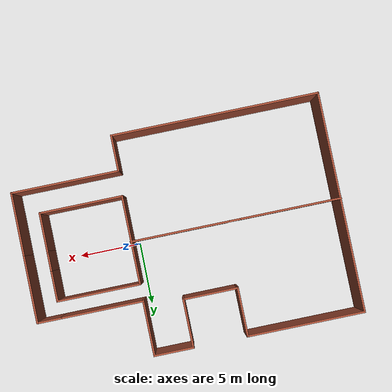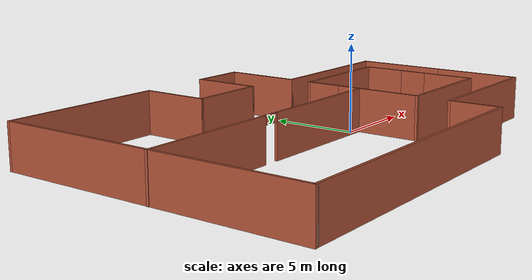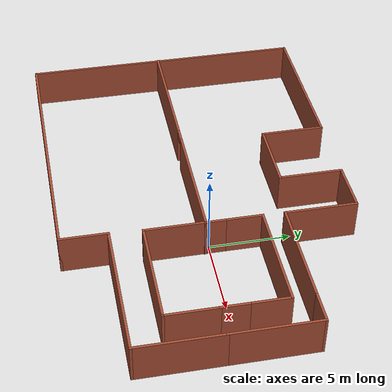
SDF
<?xml version='1.0'?>
<sdf version='1.7'>
  <model name='Building'>
    <link name='Wall_1'>
      <pose>-11.6652 8.8 0 0 -0 0</pose>
      <self_collide>0</self_collide>
      <enable_wind>0</enable_wind>
      <kinematic>0</kinematic>
      <visual name='Wall_1_Visual'>
        <pose>0 0 1.25 0 -0 0</pose>
        <geometry>
          <box>
            <size>9.5 0.15 2.5</size>
          </box>
        </geometry>
        <material>
          <script>
            <uri>file://media/materials/scripts/gazebo.material</uri>
            <name>Gazebo/Bricks</name>
          </script>
          <ambient>1 1 1 1</ambient>
          <shader type='pixel'/>
        </material>
        <meta>
          <layer>0</layer>
        </meta>
        <transparency>0</transparency>
        <cast_shadows>1</cast_shadows>
      </visual>
      <collision name='Wall_1_Collision'>
        <laser_retro>0</laser_retro>
        <max_contacts>10</max_contacts>
        <pose>0 0 1.25 0 -0 0</pose>
        <geometry>
          <box>
            <size>9.5 0.15 2.5</size>
          </box>
        </geometry>
        <surface>
          <friction>
            <ode>
              <mu>1</mu>
              <mu2>1</mu2>
              <fdir1>0 0 0</fdir1>
              <slip1>0</slip1>
              <slip2>0</slip2>
            </ode>
            <torsional>
              <coefficient>1</coefficient>
              <patch_radius>0</patch_radius>
              <surface_radius>0</surface_radius>
              <use_patch_radius>1</use_patch_radius>
              <ode>
                <slip>0</slip>
              </ode>
            </torsional>
          </friction>
          <bounce>
            <restitution_coefficient>0</restitution_coefficient>
            <threshold>1e+06</threshold>
          </bounce>
          <contact>
            <collide_without_contact>0</collide_without_contact>
            <collide_without_contact_bitmask>1</collide_without_contact_bitmask>
            <collide_bitmask>1</collide_bitmask>
            <ode>
              <soft_cfm>0</soft_cfm>
              <soft_erp>0.2</soft_erp>
              <kp>1e+13</kp>
              <kd>1</kd>
              <max_vel>0.01</max_vel>
              <min_depth>0</min_depth>
            </ode>
            <bullet>
              <split_impulse>1</split_impulse>
              <split_impulse_penetration_threshold>-0.01</split_impulse_penetration_threshold>
              <soft_cfm>0</soft_cfm>
              <soft_erp>0.2</soft_erp>
              <kp>1e+13</kp>
              <kd>1</kd>
            </bullet>
          </contact>
        </surface>
      </collision>
    </link>
    <link name='Wall_10'>
      <pose>-1.09018 8.8 0 0 -0 0</pose>
      <self_collide>0</self_collide>
      <enable_wind>0</enable_wind>
      <kinematic>0</kinematic>
      <visual name='Wall_10_Visual'>
        <pose>0 0 1.25 0 -0 0</pose>
        <geometry>
          <box>
            <size>3.25 0.15 2.5</size>
          </box>
        </geometry>
        <material>
          <script>
            <uri>file://media/materials/scripts/gazebo.material</uri>
            <name>Gazebo/Bricks</name>
          </script>
          <ambient>1 1 1 1</ambient>
          <shader type='pixel'/>
        </material>
        <meta>
          <layer>0</layer>
        </meta>
        <transparency>0</transparency>
        <cast_shadows>1</cast_shadows>
      </visual>
      <collision name='Wall_10_Collision'>
        <laser_retro>0</laser_retro>
        <max_contacts>10</max_contacts>
        <pose>0 0 1.25 0 -0 0</pose>
        <geometry>
          <box>
            <size>3.25 0.15 2.5</size>
          </box>
        </geometry>
        <surface>
          <friction>
            <ode>
              <mu>1</mu>
              <mu2>1</mu2>
              <fdir1>0 0 0</fdir1>
              <slip1>0</slip1>
              <slip2>0</slip2>
            </ode>
            <torsional>
              <coefficient>1</coefficient>
              <patch_radius>0</patch_radius>
              <surface_radius>0</surface_radius>
              <use_patch_radius>1</use_patch_radius>
              <ode>
                <slip>0</slip>
              </ode>
            </torsional>
          </friction>
          <bounce>
            <restitution_coefficient>0</restitution_coefficient>
            <threshold>1e+06</threshold>
          </bounce>
          <contact>
            <collide_without_contact>0</collide_without_contact>
            <collide_without_contact_bitmask>1</collide_without_contact_bitmask>
            <collide_bitmask>1</collide_bitmask>
            <ode>
              <soft_cfm>0</soft_cfm>
              <soft_erp>0.2</soft_erp>
              <kp>1e+13</kp>
              <kd>1</kd>
              <max_vel>0.01</max_vel>
              <min_depth>0</min_depth>
            </ode>
            <bullet>
              <split_impulse>1</split_impulse>
              <split_impulse_penetration_threshold>-0.01</split_impulse_penetration_threshold>
              <soft_cfm>0</soft_cfm>
              <soft_erp>0.2</soft_erp>
              <kp>1e+13</kp>
              <kd>1</kd>
            </bullet>
          </contact>
        </surface>
      </collision>
    </link>
    <link name='Wall_11'>
      <pose>0.45982 6.625 0 0 0 -1.5708</pose>
      <self_collide>0</self_collide>
      <enable_wind>0</enable_wind>
      <kinematic>0</kinematic>
      <visual name='Wall_11_Visual'>
        <pose>0 0 1.25 0 -0 0</pose>
        <geometry>
          <box>
            <size>4.5 0.15 2.5</size>
          </box>
        </geometry>
        <material>
          <script>
            <uri>file://media/materials/scripts/gazebo.material</uri>
            <name>Gazebo/Bricks</name>
          </script>
          <ambient>1 1 1 1</ambient>
          <shader type='pixel'/>
        </material>
        <meta>
          <layer>0</layer>
        </meta>
        <transparency>0</transparency>
        <cast_shadows>1</cast_shadows>
      </visual>
      <collision name='Wall_11_Collision'>
        <laser_retro>0</laser_retro>
        <max_contacts>10</max_contacts>
        <pose>0 0 1.25 0 -0 0</pose>
        <geometry>
          <box>
            <size>4.5 0.15 2.5</size>
          </box>
        </geometry>
        <surface>
          <friction>
            <ode>
              <mu>1</mu>
              <mu2>1</mu2>
              <fdir1>0 0 0</fdir1>
              <slip1>0</slip1>
              <slip2>0</slip2>
            </ode>
            <torsional>
              <coefficient>1</coefficient>
              <patch_radius>0</patch_radius>
              <surface_radius>0</surface_radius>
              <use_patch_radius>1</use_patch_radius>
              <ode>
                <slip>0</slip>
              </ode>
            </torsional>
          </friction>
          <bounce>
            <restitution_coefficient>0</restitution_coefficient>
            <threshold>1e+06</threshold>
          </bounce>
          <contact>
            <collide_without_contact>0</collide_without_contact>
            <collide_without_contact_bitmask>1</collide_without_contact_bitmask>
            <collide_bitmask>1</collide_bitmask>
            <ode>
              <soft_cfm>0</soft_cfm>
              <soft_erp>0.2</soft_erp>
              <kp>1e+13</kp>
              <kd>1</kd>
              <max_vel>0.01</max_vel>
              <min_depth>0</min_depth>
            </ode>
            <bullet>
              <split_impulse>1</split_impulse>
              <split_impulse_penetration_threshold>-0.01</split_impulse_penetration_threshold>
              <soft_cfm>0</soft_cfm>
              <soft_erp>0.2</soft_erp>
              <kp>1e+13</kp>
              <kd>1</kd>
            </bullet>
          </contact>
        </surface>
      </collision>
    </link>
    <link name='Wall_30'>
      <pose>0.434769 2.05416 0 0 0 -1.5708</pose>
      <self_collide>0</self_collide>
      <enable_wind>0</enable_wind>
      <kinematic>0</kinematic>
      <visual name='Wall_30_Visual'>
        <pose>0 0 1.25 0 -0 0</pose>
        <geometry>
          <box>
            <size>2.25 0.15 2.5</size>
          </box>
        </geometry>
        <material>
          <script>
            <uri>file://media/materials/scripts/gazebo.material</uri>
            <name>Gazebo/Bricks</name>
          </script>
          <ambient>1 1 1 1</ambient>
          <shader type='pixel'/>
        </material>
        <meta>
          <layer>0</layer>
        </meta>
        <transparency>0</transparency>
        <cast_shadows>1</cast_shadows>
      </visual>
      <collision name='Wall_30_Collision'>
        <laser_retro>0</laser_retro>
        <max_contacts>10</max_contacts>
        <pose>0 0 1.25 0 -0 0</pose>
        <geometry>
          <box>
            <size>2.25 0.15 2.5</size>
          </box>
        </geometry>
        <surface>
          <friction>
            <ode>
              <mu>1</mu>
              <mu2>1</mu2>
              <fdir1>0 0 0</fdir1>
              <slip1>0</slip1>
              <slip2>0</slip2>
            </ode>
            <torsional>
              <coefficient>1</coefficient>
              <patch_radius>0</patch_radius>
              <surface_radius>0</surface_radius>
              <use_patch_radius>1</use_patch_radius>
              <ode>
                <slip>0</slip>
              </ode>
            </torsional>
          </friction>
          <bounce>
            <restitution_coefficient>0</restitution_coefficient>
            <threshold>1e+06</threshold>
          </bounce>
          <contact>
            <collide_without_contact>0</collide_without_contact>
            <collide_without_contact_bitmask>1</collide_without_contact_bitmask>
            <collide_bitmask>1</collide_bitmask>
            <ode>
              <soft_cfm>0</soft_cfm>
              <soft_erp>0.2</soft_erp>
              <kp>1e+13</kp>
              <kd>1</kd>
              <max_vel>0.01</max_vel>
              <min_depth>0</min_depth>
            </ode>
            <bullet>
              <split_impulse>1</split_impulse>
              <split_impulse_penetration_threshold>-0.01</split_impulse_penetration_threshold>
              <soft_cfm>0</soft_cfm>
              <soft_erp>0.2</soft_erp>
              <kp>1e+13</kp>
              <kd>1</kd>
            </bullet>
          </contact>
        </surface>
      </collision>
    </link>
    <link name='Wall_32'>
      <pose>3.75982 4.45 0 0 -0 0</pose>
      <self_collide>0</self_collide>
      <enable_wind>0</enable_wind>
      <kinematic>0</kinematic>
      <visual name='Wall_32_Visual'>
        <pose>0 0 1.25 0 -0 0</pose>
        <geometry>
          <box>
            <size>6.75 0.15 2.5</size>
          </box>
        </geometry>
        <material>
          <script>
            <uri>file://media/materials/scripts/gazebo.material</uri>
            <name>Gazebo/Bricks</name>
          </script>
          <ambient>1 1 1 1</ambient>
          <shader type='pixel'/>
        </material>
        <meta>
          <layer>0</layer>
        </meta>
        <transparency>0</transparency>
        <cast_shadows>1</cast_shadows>
      </visual>
      <collision name='Wall_32_Collision'>
        <laser_retro>0</laser_retro>
        <max_contacts>10</max_contacts>
        <pose>0 0 1.25 0 -0 0</pose>
        <geometry>
          <box>
            <size>6.75 0.15 2.5</size>
          </box>
        </geometry>
        <surface>
          <friction>
            <ode>
              <mu>1</mu>
              <mu2>1</mu2>
              <fdir1>0 0 0</fdir1>
              <slip1>0</slip1>
              <slip2>0</slip2>
            </ode>
            <torsional>
              <coefficient>1</coefficient>
              <patch_radius>0</patch_radius>
              <surface_radius>0</surface_radius>
              <use_patch_radius>1</use_patch_radius>
              <ode>
                <slip>0</slip>
              </ode>
            </torsional>
          </friction>
          <bounce>
            <restitution_coefficient>0</restitution_coefficient>
            <threshold>1e+06</threshold>
          </bounce>
          <contact>
            <collide_without_contact>0</collide_without_contact>
            <collide_without_contact_bitmask>1</collide_without_contact_bitmask>
            <collide_bitmask>1</collide_bitmask>
            <ode>
              <soft_cfm>0</soft_cfm>
              <soft_erp>0.2</soft_erp>
              <kp>1e+13</kp>
              <kd>1</kd>
              <max_vel>0.01</max_vel>
              <min_depth>0</min_depth>
            </ode>
            <bullet>
              <split_impulse>1</split_impulse>
              <split_impulse_penetration_threshold>-0.01</split_impulse_penetration_threshold>
              <soft_cfm>0</soft_cfm>
              <soft_erp>0.2</soft_erp>
              <kp>1e+13</kp>
              <kd>1</kd>
            </bullet>
          </contact>
        </surface>
      </collision>
    </link>
    <link name='Wall_34'>
      <pose>3.73477 3.10416 0 0 -0 0</pose>
      <self_collide>0</self_collide>
      <enable_wind>0</enable_wind>
      <kinematic>0</kinematic>
      <visual name='Wall_34_Visual'>
        <pose>0 0 1.25 0 -0 0</pose>
        <geometry>
          <box>
            <size>6.75 0.15 2.5</size>
          </box>
        </geometry>
        <material>
          <script>
            <uri>file://media/materials/scripts/gazebo.material</uri>
            <name>Gazebo/Bricks</name>
          </script>
          <ambient>1 1 1 1</ambient>
          <shader type='pixel'/>
        </material>
        <meta>
          <layer>0</layer>
        </meta>
        <transparency>0</transparency>
        <cast_shadows>1</cast_shadows>
      </visual>
      <collision name='Wall_34_Collision'>
        <laser_retro>0</laser_retro>
        <max_contacts>10</max_contacts>
        <pose>0 0 1.25 0 -0 0</pose>
        <geometry>
          <box>
            <size>6.75 0.15 2.5</size>
          </box>
        </geometry>
        <surface>
          <friction>
            <ode>
              <mu>1</mu>
              <mu2>1</mu2>
              <fdir1>0 0 0</fdir1>
              <slip1>0</slip1>
              <slip2>0</slip2>
            </ode>
            <torsional>
              <coefficient>1</coefficient>
              <patch_radius>0</patch_radius>
              <surface_radius>0</surface_radius>
              <use_patch_radius>1</use_patch_radius>
              <ode>
                <slip>0</slip>
              </ode>
            </torsional>
          </friction>
          <bounce>
            <restitution_coefficient>0</restitution_coefficient>
            <threshold>1e+06</threshold>
          </bounce>
          <contact>
            <collide_without_contact>0</collide_without_contact>
            <collide_without_contact_bitmask>1</collide_without_contact_bitmask>
            <collide_bitmask>1</collide_bitmask>
            <ode>
              <soft_cfm>0</soft_cfm>
              <soft_erp>0.2</soft_erp>
              <kp>1e+13</kp>
              <kd>1</kd>
              <max_vel>0.01</max_vel>
              <min_depth>0</min_depth>
            </ode>
            <bullet>
              <split_impulse>1</split_impulse>
              <split_impulse_penetration_threshold>-0.01</split_impulse_penetration_threshold>
              <soft_cfm>0</soft_cfm>
              <soft_erp>0.2</soft_erp>
              <kp>1e+13</kp>
              <kd>1</kd>
            </bullet>
          </contact>
        </surface>
      </collision>
    </link>
    <link name='Wall_36'>
      <pose>7.03477 1.92916 0 0 0 -1.5708</pose>
      <self_collide>0</self_collide>
      <enable_wind>0</enable_wind>
      <kinematic>0</kinematic>
      <visual name='Wall_36_Visual'>
        <pose>0 0 1.25 0 -0 0</pose>
        <geometry>
          <box>
            <size>2.5 0.15 2.5</size>
          </box>
        </geometry>
        <material>
          <script>
            <uri>file://media/materials/scripts/gazebo.material</uri>
            <name>Gazebo/Bricks</name>
          </script>
          <ambient>1 1 1 1</ambient>
          <shader type='pixel'/>
        </material>
        <meta>
          <layer>0</layer>
        </meta>
        <transparency>0</transparency>
        <cast_shadows>1</cast_shadows>
      </visual>
      <collision name='Wall_36_Collision'>
        <laser_retro>0</laser_retro>
        <max_contacts>10</max_contacts>
        <pose>0 0 1.25 0 -0 0</pose>
        <geometry>
          <box>
            <size>2.5 0.15 2.5</size>
          </box>
        </geometry>
        <surface>
          <friction>
            <ode>
              <mu>1</mu>
              <mu2>1</mu2>
              <fdir1>0 0 0</fdir1>
              <slip1>0</slip1>
              <slip2>0</slip2>
            </ode>
            <torsional>
              <coefficient>1</coefficient>
              <patch_radius>0</patch_radius>
              <surface_radius>0</surface_radius>
              <use_patch_radius>1</use_patch_radius>
              <ode>
                <slip>0</slip>
              </ode>
            </torsional>
          </friction>
          <bounce>
            <restitution_coefficient>0</restitution_coefficient>
            <threshold>1e+06</threshold>
          </bounce>
          <contact>
            <collide_without_contact>0</collide_without_contact>
            <collide_without_contact_bitmask>1</collide_without_contact_bitmask>
            <collide_bitmask>1</collide_bitmask>
            <ode>
              <soft_cfm>0</soft_cfm>
              <soft_erp>0.2</soft_erp>
              <kp>1e+13</kp>
              <kd>1</kd>
              <max_vel>0.01</max_vel>
              <min_depth>0</min_depth>
            </ode>
            <bullet>
              <split_impulse>1</split_impulse>
              <split_impulse_penetration_threshold>-0.01</split_impulse_penetration_threshold>
              <soft_cfm>0</soft_cfm>
              <soft_erp>0.2</soft_erp>
              <kp>1e+13</kp>
              <kd>1</kd>
            </bullet>
          </contact>
        </surface>
      </collision>
    </link>
    <link name='Wall_38'>
      <pose>7.9847 4.44981 0 0 0 -0.000207</pose>
      <self_collide>0</self_collide>
      <enable_wind>0</enable_wind>
      <kinematic>0</kinematic>
      <visual name='Wall_38_Visual'>
        <pose>0 0 1.25 0 -0 0</pose>
        <geometry>
          <box>
            <size>2 0.15 2.5</size>
          </box>
        </geometry>
        <material>
          <script>
            <uri>file://media/materials/scripts/gazebo.material</uri>
            <name>Gazebo/Bricks</name>
          </script>
          <ambient>1 1 1 1</ambient>
          <shader type='pixel'/>
        </material>
        <meta>
          <layer>0</layer>
        </meta>
        <transparency>0</transparency>
        <cast_shadows>1</cast_shadows>
      </visual>
      <collision name='Wall_38_Collision'>
        <laser_retro>0</laser_retro>
        <max_contacts>10</max_contacts>
        <pose>0 0 1.25 0 -0 0</pose>
        <geometry>
          <box>
            <size>2 0.15 2.5</size>
          </box>
        </geometry>
        <surface>
          <friction>
            <ode>
              <mu>1</mu>
              <mu2>1</mu2>
              <fdir1>0 0 0</fdir1>
              <slip1>0</slip1>
              <slip2>0</slip2>
            </ode>
            <torsional>
              <coefficient>1</coefficient>
              <patch_radius>0</patch_radius>
              <surface_radius>0</surface_radius>
              <use_patch_radius>1</use_patch_radius>
              <ode>
                <slip>0</slip>
              </ode>
            </torsional>
          </friction>
          <bounce>
            <restitution_coefficient>0</restitution_coefficient>
            <threshold>1e+06</threshold>
          </bounce>
          <contact>
            <collide_without_contact>0</collide_without_contact>
            <collide_without_contact_bitmask>1</collide_without_contact_bitmask>
            <collide_bitmask>1</collide_bitmask>
            <ode>
              <soft_cfm>0</soft_cfm>
              <soft_erp>0.2</soft_erp>
              <kp>1e+13</kp>
              <kd>1</kd>
              <max_vel>0.01</max_vel>
              <min_depth>0</min_depth>
            </ode>
            <bullet>
              <split_impulse>1</split_impulse>
              <split_impulse_penetration_threshold>-0.01</split_impulse_penetration_threshold>
              <soft_cfm>0</soft_cfm>
              <soft_erp>0.2</soft_erp>
              <kp>1e+13</kp>
              <kd>1</kd>
            </bullet>
          </contact>
        </surface>
      </collision>
    </link>
    <link name='Wall_39'>
      <pose>8.90957 1.80212 0 0 0 -1.5708</pose>
      <self_collide>0</self_collide>
      <enable_wind>0</enable_wind>
      <kinematic>0</kinematic>
      <visual name='Wall_39_Visual'>
        <pose>0 0 1.25 0 -0 0</pose>
        <geometry>
          <box>
            <size>5.445 0.15 2.5</size>
          </box>
        </geometry>
        <material>
          <script>
            <uri>file://media/materials/scripts/gazebo.material</uri>
            <name>Gazebo/Bricks</name>
          </script>
          <ambient>1 1 1 1</ambient>
          <shader type='pixel'/>
        </material>
        <meta>
          <layer>0</layer>
        </meta>
        <transparency>0</transparency>
        <cast_shadows>1</cast_shadows>
      </visual>
      <collision name='Wall_39_Collision'>
        <laser_retro>0</laser_retro>
        <max_contacts>10</max_contacts>
        <pose>0 0 1.25 0 -0 0</pose>
        <geometry>
          <box>
            <size>5.445 0.15 2.5</size>
          </box>
        </geometry>
        <surface>
          <friction>
            <ode>
              <mu>1</mu>
              <mu2>1</mu2>
              <fdir1>0 0 0</fdir1>
              <slip1>0</slip1>
              <slip2>0</slip2>
            </ode>
            <torsional>
              <coefficient>1</coefficient>
              <patch_radius>0</patch_radius>
              <surface_radius>0</surface_radius>
              <use_patch_radius>1</use_patch_radius>
              <ode>
                <slip>0</slip>
              </ode>
            </torsional>
          </friction>
          <bounce>
            <restitution_coefficient>0</restitution_coefficient>
            <threshold>1e+06</threshold>
          </bounce>
          <contact>
            <collide_without_contact>0</collide_without_contact>
            <collide_without_contact_bitmask>1</collide_without_contact_bitmask>
            <collide_bitmask>1</collide_bitmask>
            <ode>
              <soft_cfm>0</soft_cfm>
              <soft_erp>0.2</soft_erp>
              <kp>1e+13</kp>
              <kd>1</kd>
              <max_vel>0.01</max_vel>
              <min_depth>0</min_depth>
            </ode>
            <bullet>
              <split_impulse>1</split_impulse>
              <split_impulse_penetration_threshold>-0.01</split_impulse_penetration_threshold>
              <soft_cfm>0</soft_cfm>
              <soft_erp>0.2</soft_erp>
              <kp>1e+13</kp>
              <kd>1</kd>
            </bullet>
          </contact>
        </surface>
      </collision>
    </link>
    <link name='Wall_43'>
      <pose>7.03477 -0.045843 0 0 0 -1.5708</pose>
      <self_collide>0</self_collide>
      <enable_wind>0</enable_wind>
      <kinematic>0</kinematic>
      <visual name='Wall_43_Visual'>
        <pose>0 0 1.25 0 -0 0</pose>
        <geometry>
          <box>
            <size>1.75 0.15 2.5</size>
          </box>
        </geometry>
        <material>
          <script>
            <uri>file://media/materials/scripts/gazebo.material</uri>
            <name>Gazebo/Bricks</name>
          </script>
          <ambient>1 1 1 1</ambient>
          <shader type='pixel'/>
        </material>
        <meta>
          <layer>0</layer>
        </meta>
        <transparency>0</transparency>
        <cast_shadows>1</cast_shadows>
      </visual>
      <collision name='Wall_43_Collision'>
        <laser_retro>0</laser_retro>
        <max_contacts>10</max_contacts>
        <pose>0 0 1.25 0 -0 0</pose>
        <geometry>
          <box>
            <size>1.75 0.15 2.5</size>
          </box>
        </geometry>
        <surface>
          <friction>
            <ode>
              <mu>1</mu>
              <mu2>1</mu2>
              <fdir1>0 0 0</fdir1>
              <slip1>0</slip1>
              <slip2>0</slip2>
            </ode>
            <torsional>
              <coefficient>1</coefficient>
              <patch_radius>0</patch_radius>
              <surface_radius>0</surface_radius>
              <use_patch_radius>1</use_patch_radius>
              <ode>
                <slip>0</slip>
              </ode>
            </torsional>
          </friction>
          <bounce>
            <restitution_coefficient>0</restitution_coefficient>
            <threshold>1e+06</threshold>
          </bounce>
          <contact>
            <collide_without_contact>0</collide_without_contact>
            <collide_without_contact_bitmask>1</collide_without_contact_bitmask>
            <collide_bitmask>1</collide_bitmask>
            <ode>
              <soft_cfm>0</soft_cfm>
              <soft_erp>0.2</soft_erp>
              <kp>1e+13</kp>
              <kd>1</kd>
              <max_vel>0.01</max_vel>
              <min_depth>0</min_depth>
            </ode>
            <bullet>
              <split_impulse>1</split_impulse>
              <split_impulse_penetration_threshold>-0.01</split_impulse_penetration_threshold>
              <soft_cfm>0</soft_cfm>
              <soft_erp>0.2</soft_erp>
              <kp>1e+13</kp>
              <kd>1</kd>
            </bullet>
          </contact>
        </surface>
      </collision>
    </link>
    <link name='Wall_47'>
      <pose>7.03477 -2.39584 0 0 0 -1.5708</pose>
      <self_collide>0</self_collide>
      <enable_wind>0</enable_wind>
      <kinematic>0</kinematic>
      <visual name='Wall_47_Visual'>
        <pose>0 0 1.25 0 -0 0</pose>
        <geometry>
          <box>
            <size>3.25 0.15 2.5</size>
          </box>
        </geometry>
        <material>
          <script>
            <uri>file://media/materials/scripts/gazebo.material</uri>
            <name>Gazebo/Bricks</name>
          </script>
          <ambient>1 1 1 1</ambient>
          <shader type='pixel'/>
        </material>
        <meta>
          <layer>0</layer>
        </meta>
        <transparency>0</transparency>
        <cast_shadows>1</cast_shadows>
      </visual>
      <collision name='Wall_47_Collision'>
        <laser_retro>0</laser_retro>
        <max_contacts>10</max_contacts>
        <pose>0 0 1.25 0 -0 0</pose>
        <geometry>
          <box>
            <size>3.25 0.15 2.5</size>
          </box>
        </geometry>
        <surface>
          <friction>
            <ode>
              <mu>1</mu>
              <mu2>1</mu2>
              <fdir1>0 0 0</fdir1>
              <slip1>0</slip1>
              <slip2>0</slip2>
            </ode>
            <torsional>
              <coefficient>1</coefficient>
              <patch_radius>0</patch_radius>
              <surface_radius>0</surface_radius>
              <use_patch_radius>1</use_patch_radius>
              <ode>
                <slip>0</slip>
              </ode>
            </torsional>
          </friction>
          <bounce>
            <restitution_coefficient>0</restitution_coefficient>
            <threshold>1e+06</threshold>
          </bounce>
          <contact>
            <collide_without_contact>0</collide_without_contact>
            <collide_without_contact_bitmask>1</collide_without_contact_bitmask>
            <collide_bitmask>1</collide_bitmask>
            <ode>
              <soft_cfm>0</soft_cfm>
              <soft_erp>0.2</soft_erp>
              <kp>1e+13</kp>
              <kd>1</kd>
              <max_vel>0.01</max_vel>
              <min_depth>0</min_depth>
            </ode>
            <bullet>
              <split_impulse>1</split_impulse>
              <split_impulse_penetration_threshold>-0.01</split_impulse_penetration_threshold>
              <soft_cfm>0</soft_cfm>
              <soft_erp>0.2</soft_erp>
              <kp>1e+13</kp>
              <kd>1</kd>
            </bullet>
          </contact>
        </surface>
      </collision>
    </link>
    <link name='Wall_48'>
      <pose>3.73477 -3.94584 0 0 -0 3.14159</pose>
      <self_collide>0</self_collide>
      <enable_wind>0</enable_wind>
      <kinematic>0</kinematic>
      <visual name='Wall_48_Visual'>
        <pose>0 0 1.25 0 -0 0</pose>
        <geometry>
          <box>
            <size>6.75 0.15 2.5</size>
          </box>
        </geometry>
        <material>
          <script>
            <uri>file://media/materials/scripts/gazebo.material</uri>
            <name>Gazebo/Bricks</name>
          </script>
          <ambient>1 1 1 1</ambient>
          <shader type='pixel'/>
        </material>
        <meta>
          <layer>0</layer>
        </meta>
        <transparency>0</transparency>
        <cast_shadows>1</cast_shadows>
      </visual>
      <collision name='Wall_48_Collision'>
        <laser_retro>0</laser_retro>
        <max_contacts>10</max_contacts>
        <pose>0 0 1.25 0 -0 0</pose>
        <geometry>
          <box>
            <size>6.75 0.15 2.5</size>
          </box>
        </geometry>
        <surface>
          <friction>
            <ode>
              <mu>1</mu>
              <mu2>1</mu2>
              <fdir1>0 0 0</fdir1>
              <slip1>0</slip1>
              <slip2>0</slip2>
            </ode>
            <torsional>
              <coefficient>1</coefficient>
              <patch_radius>0</patch_radius>
              <surface_radius>0</surface_radius>
              <use_patch_radius>1</use_patch_radius>
              <ode>
                <slip>0</slip>
              </ode>
            </torsional>
          </friction>
          <bounce>
            <restitution_coefficient>0</restitution_coefficient>
            <threshold>1e+06</threshold>
          </bounce>
          <contact>
            <collide_without_contact>0</collide_without_contact>
            <collide_without_contact_bitmask>1</collide_without_contact_bitmask>
            <collide_bitmask>1</collide_bitmask>
            <ode>
              <soft_cfm>0</soft_cfm>
              <soft_erp>0.2</soft_erp>
              <kp>1e+13</kp>
              <kd>1</kd>
              <max_vel>0.01</max_vel>
              <min_depth>0</min_depth>
            </ode>
            <bullet>
              <split_impulse>1</split_impulse>
              <split_impulse_penetration_threshold>-0.01</split_impulse_penetration_threshold>
              <soft_cfm>0</soft_cfm>
              <soft_erp>0.2</soft_erp>
              <kp>1e+13</kp>
              <kd>1</kd>
            </bullet>
          </contact>
        </surface>
      </collision>
    </link>
    <link name='Wall_49'>
      <pose>0.434769 -1.47084 0 0 -0 1.5708</pose>
      <self_collide>0</self_collide>
      <enable_wind>0</enable_wind>
      <kinematic>0</kinematic>
      <visual name='Wall_49_Visual'>
        <pose>0 0 1.25 0 -0 0</pose>
        <geometry>
          <box>
            <size>5.1 0.15 2.5</size>
          </box>
        </geometry>
        <material>
          <script>
            <uri>file://media/materials/scripts/gazebo.material</uri>
            <name>Gazebo/Bricks</name>
          </script>
          <ambient>1 1 1 1</ambient>
          <shader type='pixel'/>
        </material>
        <meta>
          <layer>0</layer>
        </meta>
        <transparency>0</transparency>
        <cast_shadows>1</cast_shadows>
      </visual>
      <collision name='Wall_49_Collision'>
        <laser_retro>0</laser_retro>
        <max_contacts>10</max_contacts>
        <pose>0 0 1.25 0 -0 0</pose>
        <geometry>
          <box>
            <size>5.1 0.15 2.5</size>
          </box>
        </geometry>
        <surface>
          <friction>
            <ode>
              <mu>1</mu>
              <mu2>1</mu2>
              <fdir1>0 0 0</fdir1>
              <slip1>0</slip1>
              <slip2>0</slip2>
            </ode>
            <torsional>
              <coefficient>1</coefficient>
              <patch_radius>0</patch_radius>
              <surface_radius>0</surface_radius>
              <use_patch_radius>1</use_patch_radius>
              <ode>
                <slip>0</slip>
              </ode>
            </torsional>
          </friction>
          <bounce>
            <restitution_coefficient>0</restitution_coefficient>
            <threshold>1e+06</threshold>
          </bounce>
          <contact>
            <collide_without_contact>0</collide_without_contact>
            <collide_without_contact_bitmask>1</collide_without_contact_bitmask>
            <collide_bitmask>1</collide_bitmask>
            <ode>
              <soft_cfm>0</soft_cfm>
              <soft_erp>0.2</soft_erp>
              <kp>1e+13</kp>
              <kd>1</kd>
              <max_vel>0.01</max_vel>
              <min_depth>0</min_depth>
            </ode>
            <bullet>
              <split_impulse>1</split_impulse>
              <split_impulse_penetration_threshold>-0.01</split_impulse_penetration_threshold>
              <soft_cfm>0</soft_cfm>
              <soft_erp>0.2</soft_erp>
              <kp>1e+13</kp>
              <kd>1</kd>
            </bullet>
          </contact>
        </surface>
      </collision>
    </link>
    <link name='Wall_51'>
      <pose>8.90957 -3.39538 0 0 0 -1.5708</pose>
      <self_collide>0</self_collide>
      <enable_wind>0</enable_wind>
      <kinematic>0</kinematic>
      <visual name='Wall_51_Visual'>
        <pose>0 0 1.25 0 -0 0</pose>
        <geometry>
          <box>
            <size>5.25 0.15 2.5</size>
          </box>
        </geometry>
        <material>
          <script>
            <uri>file://media/materials/scripts/gazebo.material</uri>
            <name>Gazebo/Bricks</name>
          </script>
          <ambient>1 1 1 1</ambient>
          <shader type='pixel'/>
        </material>
        <meta>
          <layer>0</layer>
        </meta>
        <transparency>0</transparency>
        <cast_shadows>1</cast_shadows>
      </visual>
      <collision name='Wall_51_Collision'>
        <laser_retro>0</laser_retro>
        <max_contacts>10</max_contacts>
        <pose>0 0 1.25 0 -0 0</pose>
        <geometry>
          <box>
            <size>5.25 0.15 2.5</size>
          </box>
        </geometry>
        <surface>
          <friction>
            <ode>
              <mu>1</mu>
              <mu2>1</mu2>
              <fdir1>0 0 0</fdir1>
              <slip1>0</slip1>
              <slip2>0</slip2>
            </ode>
            <torsional>
              <coefficient>1</coefficient>
              <patch_radius>0</patch_radius>
              <surface_radius>0</surface_radius>
              <use_patch_radius>1</use_patch_radius>
              <ode>
                <slip>0</slip>
              </ode>
            </torsional>
          </friction>
          <bounce>
            <restitution_coefficient>0</restitution_coefficient>
            <threshold>1e+06</threshold>
          </bounce>
          <contact>
            <collide_without_contact>0</collide_without_contact>
            <collide_without_contact_bitmask>1</collide_without_contact_bitmask>
            <collide_bitmask>1</collide_bitmask>
            <ode>
              <soft_cfm>0</soft_cfm>
              <soft_erp>0.2</soft_erp>
              <kp>1e+13</kp>
              <kd>1</kd>
              <max_vel>0.01</max_vel>
              <min_depth>0</min_depth>
            </ode>
            <bullet>
              <split_impulse>1</split_impulse>
              <split_impulse_penetration_threshold>-0.01</split_impulse_penetration_threshold>
              <soft_cfm>0</soft_cfm>
              <soft_erp>0.2</soft_erp>
              <kp>1e+13</kp>
              <kd>1</kd>
            </bullet>
          </contact>
        </surface>
      </collision>
    </link>
    <link name='Wall_54'>
      <pose>4.60957 -5.94538 0 0 -0 3.14159</pose>
      <self_collide>0</self_collide>
      <enable_wind>0</enable_wind>
      <kinematic>0</kinematic>
      <visual name='Wall_54_Visual'>
        <pose>0 0 1.25 0 -0 0</pose>
        <geometry>
          <box>
            <size>8.75 0.15 2.5</size>
          </box>
        </geometry>
        <material>
          <script>
            <uri>file://media/materials/scripts/gazebo.material</uri>
            <name>Gazebo/Bricks</name>
          </script>
          <ambient>1 1 1 1</ambient>
          <shader type='pixel'/>
        </material>
        <meta>
          <layer>0</layer>
        </meta>
        <transparency>0</transparency>
        <cast_shadows>1</cast_shadows>
      </visual>
      <collision name='Wall_54_Collision'>
        <laser_retro>0</laser_retro>
        <max_contacts>10</max_contacts>
        <pose>0 0 1.25 0 -0 0</pose>
        <geometry>
          <box>
            <size>8.75 0.15 2.5</size>
          </box>
        </geometry>
        <surface>
          <friction>
            <ode>
              <mu>1</mu>
              <mu2>1</mu2>
              <fdir1>0 0 0</fdir1>
              <slip1>0</slip1>
              <slip2>0</slip2>
            </ode>
            <torsional>
              <coefficient>1</coefficient>
              <patch_radius>0</patch_radius>
              <surface_radius>0</surface_radius>
              <use_patch_radius>1</use_patch_radius>
              <ode>
                <slip>0</slip>
              </ode>
            </torsional>
          </friction>
          <bounce>
            <restitution_coefficient>0</restitution_coefficient>
            <threshold>1e+06</threshold>
          </bounce>
          <contact>
            <collide_without_contact>0</collide_without_contact>
            <collide_without_contact_bitmask>1</collide_without_contact_bitmask>
            <collide_bitmask>1</collide_bitmask>
            <ode>
              <soft_cfm>0</soft_cfm>
              <soft_erp>0.2</soft_erp>
              <kp>1e+13</kp>
              <kd>1</kd>
              <max_vel>0.01</max_vel>
              <min_depth>0</min_depth>
            </ode>
            <bullet>
              <split_impulse>1</split_impulse>
              <split_impulse_penetration_threshold>-0.01</split_impulse_penetration_threshold>
              <soft_cfm>0</soft_cfm>
              <soft_erp>0.2</soft_erp>
              <kp>1e+13</kp>
              <kd>1</kd>
            </bullet>
          </contact>
        </surface>
      </collision>
    </link>
    <link name='Wall_55'>
      <pose>0.309574 -7.37038 0 0 0 -1.5708</pose>
      <self_collide>0</self_collide>
      <enable_wind>0</enable_wind>
      <kinematic>0</kinematic>
      <visual name='Wall_55_Visual'>
        <pose>0 0 1.25 0 -0 0</pose>
        <geometry>
          <box>
            <size>3 0.15 2.5</size>
          </box>
        </geometry>
        <material>
          <script>
            <uri>file://media/materials/scripts/gazebo.material</uri>
            <name>Gazebo/Bricks</name>
          </script>
          <ambient>1 1 1 1</ambient>
          <shader type='pixel'/>
        </material>
        <meta>
          <layer>0</layer>
        </meta>
        <transparency>0</transparency>
        <cast_shadows>1</cast_shadows>
      </visual>
      <collision name='Wall_55_Collision'>
        <laser_retro>0</laser_retro>
        <max_contacts>10</max_contacts>
        <pose>0 0 1.25 0 -0 0</pose>
        <geometry>
          <box>
            <size>3 0.15 2.5</size>
          </box>
        </geometry>
        <surface>
          <friction>
            <ode>
              <mu>1</mu>
              <mu2>1</mu2>
              <fdir1>0 0 0</fdir1>
              <slip1>0</slip1>
              <slip2>0</slip2>
            </ode>
            <torsional>
              <coefficient>1</coefficient>
              <patch_radius>0</patch_radius>
              <surface_radius>0</surface_radius>
              <use_patch_radius>1</use_patch_radius>
              <ode>
                <slip>0</slip>
              </ode>
            </torsional>
          </friction>
          <bounce>
            <restitution_coefficient>0</restitution_coefficient>
            <threshold>1e+06</threshold>
          </bounce>
          <contact>
            <collide_without_contact>0</collide_without_contact>
            <collide_without_contact_bitmask>1</collide_without_contact_bitmask>
            <collide_bitmask>1</collide_bitmask>
            <ode>
              <soft_cfm>0</soft_cfm>
              <soft_erp>0.2</soft_erp>
              <kp>1e+13</kp>
              <kd>1</kd>
              <max_vel>0.01</max_vel>
              <min_depth>0</min_depth>
            </ode>
            <bullet>
              <split_impulse>1</split_impulse>
              <split_impulse_penetration_threshold>-0.01</split_impulse_penetration_threshold>
              <soft_cfm>0</soft_cfm>
              <soft_erp>0.2</soft_erp>
              <kp>1e+13</kp>
              <kd>1</kd>
            </bullet>
          </contact>
        </surface>
      </collision>
    </link>
    <link name='Wall_56'>
      <pose>-7.99043 -8.79538 0 0 -0 3.14159</pose>
      <self_collide>0</self_collide>
      <enable_wind>0</enable_wind>
      <kinematic>0</kinematic>
      <visual name='Wall_56_Visual'>
        <pose>0 0 1.25 0 -0 0</pose>
        <geometry>
          <box>
            <size>16.75 0.15 2.5</size>
          </box>
        </geometry>
        <material>
          <script>
            <uri>file://media/materials/scripts/gazebo.material</uri>
            <name>Gazebo/Bricks</name>
          </script>
          <ambient>1 1 1 1</ambient>
          <shader type='pixel'/>
        </material>
        <meta>
          <layer>0</layer>
        </meta>
        <transparency>0</transparency>
        <cast_shadows>1</cast_shadows>
      </visual>
      <collision name='Wall_56_Collision'>
        <laser_retro>0</laser_retro>
        <max_contacts>10</max_contacts>
        <pose>0 0 1.25 0 -0 0</pose>
        <geometry>
          <box>
            <size>16.75 0.15 2.5</size>
          </box>
        </geometry>
        <surface>
          <friction>
            <ode>
              <mu>1</mu>
              <mu2>1</mu2>
              <fdir1>0 0 0</fdir1>
              <slip1>0</slip1>
              <slip2>0</slip2>
            </ode>
            <torsional>
              <coefficient>1</coefficient>
              <patch_radius>0</patch_radius>
              <surface_radius>0</surface_radius>
              <use_patch_radius>1</use_patch_radius>
              <ode>
                <slip>0</slip>
              </ode>
            </torsional>
          </friction>
          <bounce>
            <restitution_coefficient>0</restitution_coefficient>
            <threshold>1e+06</threshold>
          </bounce>
          <contact>
            <collide_without_contact>0</collide_without_contact>
            <collide_without_contact_bitmask>1</collide_without_contact_bitmask>
            <collide_bitmask>1</collide_bitmask>
            <ode>
              <soft_cfm>0</soft_cfm>
              <soft_erp>0.2</soft_erp>
              <kp>1e+13</kp>
              <kd>1</kd>
              <max_vel>0.01</max_vel>
              <min_depth>0</min_depth>
            </ode>
            <bullet>
              <split_impulse>1</split_impulse>
              <split_impulse_penetration_threshold>-0.01</split_impulse_penetration_threshold>
              <soft_cfm>0</soft_cfm>
              <soft_erp>0.2</soft_erp>
              <kp>1e+13</kp>
              <kd>1</kd>
            </bullet>
          </contact>
        </surface>
      </collision>
    </link>
    <link name='Wall_57'>
      <pose>-16.2904 -8.79538 0 0 -0 0</pose>
      <self_collide>0</self_collide>
      <enable_wind>0</enable_wind>
      <kinematic>0</kinematic>
      <visual name='Wall_57_Visual'>
        <pose>0 0 1.25 0 -0 0</pose>
        <geometry>
          <box>
            <size>0.15 0.15 2.5</size>
          </box>
        </geometry>
        <material>
          <script>
            <uri>file://media/materials/scripts/gazebo.material</uri>
            <name>Gazebo/Grey</name>
          </script>
          <ambient>1 1 1 1</ambient>
          <shader type='pixel'/>
        </material>
        <meta>
          <layer>0</layer>
        </meta>
        <transparency>0</transparency>
        <cast_shadows>1</cast_shadows>
      </visual>
      <collision name='Wall_57_Collision'>
        <laser_retro>0</laser_retro>
        <max_contacts>10</max_contacts>
        <pose>0 0 1.25 0 -0 0</pose>
        <geometry>
          <box>
            <size>0.15 0.15 2.5</size>
          </box>
        </geometry>
        <surface>
          <friction>
            <ode>
              <mu>1</mu>
              <mu2>1</mu2>
              <fdir1>0 0 0</fdir1>
              <slip1>0</slip1>
              <slip2>0</slip2>
            </ode>
            <torsional>
              <coefficient>1</coefficient>
              <patch_radius>0</patch_radius>
              <surface_radius>0</surface_radius>
              <use_patch_radius>1</use_patch_radius>
              <ode>
                <slip>0</slip>
              </ode>
            </torsional>
          </friction>
          <bounce>
            <restitution_coefficient>0</restitution_coefficient>
            <threshold>1e+06</threshold>
          </bounce>
          <contact>
            <collide_without_contact>0</collide_without_contact>
            <collide_without_contact_bitmask>1</collide_without_contact_bitmask>
            <collide_bitmask>1</collide_bitmask>
            <ode>
              <soft_cfm>0</soft_cfm>
              <soft_erp>0.2</soft_erp>
              <kp>1e+13</kp>
              <kd>1</kd>
              <max_vel>0.01</max_vel>
              <min_depth>0</min_depth>
            </ode>
            <bullet>
              <split_impulse>1</split_impulse>
              <split_impulse_penetration_threshold>-0.01</split_impulse_penetration_threshold>
              <soft_cfm>0</soft_cfm>
              <soft_erp>0.2</soft_erp>
              <kp>1e+13</kp>
              <kd>1</kd>
            </bullet>
          </contact>
        </surface>
      </collision>
    </link>
    <link name='Wall_60'>
      <pose>-16.3402 0 0 0 0 -1.5708</pose>
      <self_collide>0</self_collide>
      <enable_wind>0</enable_wind>
      <kinematic>0</kinematic>
      <visual name='Wall_60_Visual'>
        <pose>0 0 1.25 0 -0 0</pose>
        <geometry>
          <box>
            <size>17.75 0.15 2.5</size>
          </box>
        </geometry>
        <material>
          <script>
            <uri>file://media/materials/scripts/gazebo.material</uri>
            <name>Gazebo/Bricks</name>
          </script>
          <ambient>1 1 1 1</ambient>
          <shader type='pixel'/>
        </material>
        <meta>
          <layer>0</layer>
        </meta>
        <transparency>0</transparency>
        <cast_shadows>1</cast_shadows>
      </visual>
      <collision name='Wall_60_Collision'>
        <laser_retro>0</laser_retro>
        <max_contacts>10</max_contacts>
        <pose>0 0 1.25 0 -0 0</pose>
        <geometry>
          <box>
            <size>17.75 0.15 2.5</size>
          </box>
        </geometry>
        <surface>
          <friction>
            <ode>
              <mu>1</mu>
              <mu2>1</mu2>
              <fdir1>0 0 0</fdir1>
              <slip1>0</slip1>
              <slip2>0</slip2>
            </ode>
            <torsional>
              <coefficient>1</coefficient>
              <patch_radius>0</patch_radius>
              <surface_radius>0</surface_radius>
              <use_patch_radius>1</use_patch_radius>
              <ode>
                <slip>0</slip>
              </ode>
            </torsional>
          </friction>
          <bounce>
            <restitution_coefficient>0</restitution_coefficient>
            <threshold>1e+06</threshold>
          </bounce>
          <contact>
            <collide_without_contact>0</collide_without_contact>
            <collide_without_contact_bitmask>1</collide_without_contact_bitmask>
            <collide_bitmask>1</collide_bitmask>
            <ode>
              <soft_cfm>0</soft_cfm>
              <soft_erp>0.2</soft_erp>
              <kp>1e+13</kp>
              <kd>1</kd>
              <max_vel>0.01</max_vel>
              <min_depth>0</min_depth>
            </ode>
            <bullet>
              <split_impulse>1</split_impulse>
              <split_impulse_penetration_threshold>-0.01</split_impulse_penetration_threshold>
              <soft_cfm>0</soft_cfm>
              <soft_erp>0.2</soft_erp>
              <kp>1e+13</kp>
              <kd>1</kd>
            </bullet>
          </contact>
        </surface>
      </collision>
    </link>
    <link name='Wall_62'>
      <pose>-7.94557 -0.292213 0 0 -0 3.14159</pose>
      <self_collide>0</self_collide>
      <enable_wind>0</enable_wind>
      <kinematic>0</kinematic>
      <visual name='Wall_62_Visual_0'>
        <pose>-4.52361 0 1.25 0 -0 0</pose>
        <geometry>
          <box>
            <size>7.95278 0.15 2.5</size>
          </box>
        </geometry>
        <material>
          <script>
            <uri>file://media/materials/scripts/gazebo.material</uri>
            <name>Gazebo/Bricks</name>
          </script>
          <ambient>1 1 1 1</ambient>
          <shader type='pixel'/>
        </material>
        <meta>
          <layer>0</layer>
        </meta>
        <transparency>0</transparency>
        <cast_shadows>1</cast_shadows>
      </visual>
      <visual name='Wall_62_Visual_1'>
        <pose>4.42639 0 1.25 0 -0 0</pose>
        <geometry>
          <box>
            <size>8.14722 0.15 2.5</size>
          </box>
        </geometry>
        <material>
          <script>
            <uri>file://media/materials/scripts/gazebo.material</uri>
            <name>Gazebo/Bricks</name>
          </script>
          <ambient>1 1 1 1</ambient>
          <shader type='pixel'/>
        </material>
        <meta>
          <layer>0</layer>
        </meta>
        <transparency>0</transparency>
        <cast_shadows>1</cast_shadows>
      </visual>
      <visual name='Wall_62_Visual_2'>
        <pose>-0.097219 0 2.25 0 -0 0</pose>
        <geometry>
          <box>
            <size>0.9 0.15 0.5</size>
          </box>
        </geometry>
        <material>
          <script>
            <uri>file://media/materials/scripts/gazebo.material</uri>
            <name>Gazebo/Bricks</name>
          </script>
          <ambient>1 1 1 1</ambient>
          <shader type='pixel'/>
        </material>
        <meta>
          <layer>0</layer>
        </meta>
        <transparency>0</transparency>
        <cast_shadows>1</cast_shadows>
      </visual>
      <collision name='Wall_62_Collision_1'>
        <laser_retro>0</laser_retro>
        <max_contacts>10</max_contacts>
        <pose>4.42639 0 1.25 0 -0 0</pose>
        <geometry>
          <box>
            <size>8.14722 0.15 2.5</size>
          </box>
        </geometry>
        <surface>
          <friction>
            <ode>
              <mu>1</mu>
              <mu2>1</mu2>
              <fdir1>0 0 0</fdir1>
              <slip1>0</slip1>
              <slip2>0</slip2>
            </ode>
            <torsional>
              <coefficient>1</coefficient>
              <patch_radius>0</patch_radius>
              <surface_radius>0</surface_radius>
              <use_patch_radius>1</use_patch_radius>
              <ode>
                <slip>0</slip>
              </ode>
            </torsional>
          </friction>
          <bounce>
            <restitution_coefficient>0</restitution_coefficient>
            <threshold>1e+06</threshold>
          </bounce>
          <contact>
            <collide_without_contact>0</collide_without_contact>
            <collide_without_contact_bitmask>1</collide_without_contact_bitmask>
            <collide_bitmask>1</collide_bitmask>
            <ode>
              <soft_cfm>0</soft_cfm>
              <soft_erp>0.2</soft_erp>
              <kp>1e+13</kp>
              <kd>1</kd>
              <max_vel>0.01</max_vel>
              <min_depth>0</min_depth>
            </ode>
            <bullet>
              <split_impulse>1</split_impulse>
              <split_impulse_penetration_threshold>-0.01</split_impulse_penetration_threshold>
              <soft_cfm>0</soft_cfm>
              <soft_erp>0.2</soft_erp>
              <kp>1e+13</kp>
              <kd>1</kd>
            </bullet>
          </contact>
        </surface>
      </collision>
      <collision name='Wall_62_Collision_0'>
        <laser_retro>0</laser_retro>
        <max_contacts>10</max_contacts>
        <pose>-4.52361 0 1.25 0 -0 0</pose>
        <geometry>
          <box>
            <size>7.95278 0.15 2.5</size>
          </box>
        </geometry>
        <surface>
          <friction>
            <ode>
              <mu>1</mu>
              <mu2>1</mu2>
              <fdir1>0 0 0</fdir1>
              <slip1>0</slip1>
              <slip2>0</slip2>
            </ode>
            <torsional>
              <coefficient>1</coefficient>
              <patch_radius>0</patch_radius>
              <surface_radius>0</surface_radius>
              <use_patch_radius>1</use_patch_radius>
              <ode>
                <slip>0</slip>
              </ode>
            </torsional>
          </friction>
          <bounce>
            <restitution_coefficient>0</restitution_coefficient>
            <threshold>1e+06</threshold>
          </bounce>
          <contact>
            <collide_without_contact>0</collide_without_contact>
            <collide_without_contact_bitmask>1</collide_without_contact_bitmask>
            <collide_bitmask>1</collide_bitmask>
            <ode>
              <soft_cfm>0</soft_cfm>
              <soft_erp>0.2</soft_erp>
              <kp>1e+13</kp>
              <kd>1</kd>
              <max_vel>0.01</max_vel>
              <min_depth>0</min_depth>
            </ode>
            <bullet>
              <split_impulse>1</split_impulse>
              <split_impulse_penetration_threshold>-0.01</split_impulse_penetration_threshold>
              <soft_cfm>0</soft_cfm>
              <soft_erp>0.2</soft_erp>
              <kp>1e+13</kp>
              <kd>1</kd>
            </bullet>
          </contact>
        </surface>
      </collision>
      <collision name='Wall_62_Collision_2'>
        <laser_retro>0</laser_retro>
        <max_contacts>10</max_contacts>
        <pose>-0.097219 0 2.25 0 -0 0</pose>
        <geometry>
          <box>
            <size>0.9 0.15 0.5</size>
          </box>
        </geometry>
        <surface>
          <friction>
            <ode>
              <mu>1</mu>
              <mu2>1</mu2>
              <fdir1>0 0 0</fdir1>
              <slip1>0</slip1>
              <slip2>0</slip2>
            </ode>
            <torsional>
              <coefficient>1</coefficient>
              <patch_radius>0</patch_radius>
              <surface_radius>0</surface_radius>
              <use_patch_radius>1</use_patch_radius>
              <ode>
                <slip>0</slip>
              </ode>
            </torsional>
          </friction>
          <bounce>
            <restitution_coefficient>0</restitution_coefficient>
            <threshold>1e+06</threshold>
          </bounce>
          <contact>
            <collide_without_contact>0</collide_without_contact>
            <collide_without_contact_bitmask>1</collide_without_contact_bitmask>
            <collide_bitmask>1</collide_bitmask>
            <ode>
              <soft_cfm>0</soft_cfm>
              <soft_erp>0.2</soft_erp>
              <kp>1e+13</kp>
              <kd>1</kd>
              <max_vel>0.01</max_vel>
              <min_depth>0</min_depth>
            </ode>
            <bullet>
              <split_impulse>1</split_impulse>
              <split_impulse_penetration_threshold>-0.01</split_impulse_penetration_threshold>
              <soft_cfm>0</soft_cfm>
              <soft_erp>0.2</soft_erp>
              <kp>1e+13</kp>
              <kd>1</kd>
            </bullet>
          </contact>
        </surface>
      </collision>
    </link>
    <link name='Wall_7'>
      <pose>-6.99018 6.875 0 0 0 -1.5708</pose>
      <self_collide>0</self_collide>
      <enable_wind>0</enable_wind>
      <kinematic>0</kinematic>
      <visual name='Wall_7_Visual'>
        <pose>0 0 1.25 0 -0 0</pose>
        <geometry>
          <box>
            <size>4 0.15 2.5</size>
          </box>
        </geometry>
        <material>
          <script>
            <uri>file://media/materials/scripts/gazebo.material</uri>
            <name>Gazebo/Bricks</name>
          </script>
          <ambient>1 1 1 1</ambient>
          <shader type='pixel'/>
        </material>
        <meta>
          <layer>0</layer>
        </meta>
        <transparency>0</transparency>
        <cast_shadows>1</cast_shadows>
      </visual>
      <collision name='Wall_7_Collision'>
        <laser_retro>0</laser_retro>
        <max_contacts>10</max_contacts>
        <pose>0 0 1.25 0 -0 0</pose>
        <geometry>
          <box>
            <size>4 0.15 2.5</size>
          </box>
        </geometry>
        <surface>
          <friction>
            <ode>
              <mu>1</mu>
              <mu2>1</mu2>
              <fdir1>0 0 0</fdir1>
              <slip1>0</slip1>
              <slip2>0</slip2>
            </ode>
            <torsional>
              <coefficient>1</coefficient>
              <patch_radius>0</patch_radius>
              <surface_radius>0</surface_radius>
              <use_patch_radius>1</use_patch_radius>
              <ode>
                <slip>0</slip>
              </ode>
            </torsional>
          </friction>
          <bounce>
            <restitution_coefficient>0</restitution_coefficient>
            <threshold>1e+06</threshold>
          </bounce>
          <contact>
            <collide_without_contact>0</collide_without_contact>
            <collide_without_contact_bitmask>1</collide_without_contact_bitmask>
            <collide_bitmask>1</collide_bitmask>
            <ode>
              <soft_cfm>0</soft_cfm>
              <soft_erp>0.2</soft_erp>
              <kp>1e+13</kp>
              <kd>1</kd>
              <max_vel>0.01</max_vel>
              <min_depth>0</min_depth>
            </ode>
            <bullet>
              <split_impulse>1</split_impulse>
              <split_impulse_penetration_threshold>-0.01</split_impulse_penetration_threshold>
              <soft_cfm>0</soft_cfm>
              <soft_erp>0.2</soft_erp>
              <kp>1e+13</kp>
              <kd>1</kd>
            </bullet>
          </contact>
        </surface>
      </collision>
    </link>
    <link name='Wall_8'>
      <pose>-4.81518 4.95 0 0 -0 0</pose>
      <self_collide>0</self_collide>
      <enable_wind>0</enable_wind>
      <kinematic>0</kinematic>
      <visual name='Wall_8_Visual'>
        <pose>0 0 1.25 0 -0 0</pose>
        <geometry>
          <box>
            <size>4.5 0.15 2.5</size>
          </box>
        </geometry>
        <material>
          <script>
            <uri>file://media/materials/scripts/gazebo.material</uri>
            <name>Gazebo/Bricks</name>
          </script>
          <ambient>1 1 1 1</ambient>
          <shader type='pixel'/>
        </material>
        <meta>
          <layer>0</layer>
        </meta>
        <transparency>0</transparency>
        <cast_shadows>1</cast_shadows>
      </visual>
      <collision name='Wall_8_Collision'>
        <laser_retro>0</laser_retro>
        <max_contacts>10</max_contacts>
        <pose>0 0 1.25 0 -0 0</pose>
        <geometry>
          <box>
            <size>4.5 0.15 2.5</size>
          </box>
        </geometry>
        <surface>
          <friction>
            <ode>
              <mu>1</mu>
              <mu2>1</mu2>
              <fdir1>0 0 0</fdir1>
              <slip1>0</slip1>
              <slip2>0</slip2>
            </ode>
            <torsional>
              <coefficient>1</coefficient>
              <patch_radius>0</patch_radius>
              <surface_radius>0</surface_radius>
              <use_patch_radius>1</use_patch_radius>
              <ode>
                <slip>0</slip>
              </ode>
            </torsional>
          </friction>
          <bounce>
            <restitution_coefficient>0</restitution_coefficient>
            <threshold>1e+06</threshold>
          </bounce>
          <contact>
            <collide_without_contact>0</collide_without_contact>
            <collide_without_contact_bitmask>1</collide_without_contact_bitmask>
            <collide_bitmask>1</collide_bitmask>
            <ode>
              <soft_cfm>0</soft_cfm>
              <soft_erp>0.2</soft_erp>
              <kp>1e+13</kp>
              <kd>1</kd>
              <max_vel>0.01</max_vel>
              <min_depth>0</min_depth>
            </ode>
            <bullet>
              <split_impulse>1</split_impulse>
              <split_impulse_penetration_threshold>-0.01</split_impulse_penetration_threshold>
              <soft_cfm>0</soft_cfm>
              <soft_erp>0.2</soft_erp>
              <kp>1e+13</kp>
              <kd>1</kd>
            </bullet>
          </contact>
        </surface>
      </collision>
    </link>
    <link name='Wall_9'>
      <pose>-2.64018 6.875 0 0 -0 1.5708</pose>
      <self_collide>0</self_collide>
      <enable_wind>0</enable_wind>
      <kinematic>0</kinematic>
      <visual name='Wall_9_Visual'>
        <pose>0 0 1.25 0 -0 0</pose>
        <geometry>
          <box>
            <size>4 0.15 2.5</size>
          </box>
        </geometry>
        <material>
          <script>
            <uri>file://media/materials/scripts/gazebo.material</uri>
            <name>Gazebo/Bricks</name>
          </script>
          <ambient>1 1 1 1</ambient>
          <shader type='pixel'/>
        </material>
        <meta>
          <layer>0</layer>
        </meta>
        <transparency>0</transparency>
        <cast_shadows>1</cast_shadows>
      </visual>
      <collision name='Wall_9_Collision'>
        <laser_retro>0</laser_retro>
        <max_contacts>10</max_contacts>
        <pose>0 0 1.25 0 -0 0</pose>
        <geometry>
          <box>
            <size>4 0.15 2.5</size>
          </box>
        </geometry>
        <surface>
          <friction>
            <ode>
              <mu>1</mu>
              <mu2>1</mu2>
              <fdir1>0 0 0</fdir1>
              <slip1>0</slip1>
              <slip2>0</slip2>
            </ode>
            <torsional>
              <coefficient>1</coefficient>
              <patch_radius>0</patch_radius>
              <surface_radius>0</surface_radius>
              <use_patch_radius>1</use_patch_radius>
              <ode>
                <slip>0</slip>
              </ode>
            </torsional>
          </friction>
          <bounce>
            <restitution_coefficient>0</restitution_coefficient>
            <threshold>1e+06</threshold>
          </bounce>
          <contact>
            <collide_without_contact>0</collide_without_contact>
            <collide_without_contact_bitmask>1</collide_without_contact_bitmask>
            <collide_bitmask>1</collide_bitmask>
            <ode>
              <soft_cfm>0</soft_cfm>
              <soft_erp>0.2</soft_erp>
              <kp>1e+13</kp>
              <kd>1</kd>
              <max_vel>0.01</max_vel>
              <min_depth>0</min_depth>
            </ode>
            <bullet>
              <split_impulse>1</split_impulse>
              <split_impulse_penetration_threshold>-0.01</split_impulse_penetration_threshold>
              <soft_cfm>0</soft_cfm>
              <soft_erp>0.2</soft_erp>
              <kp>1e+13</kp>
              <kd>1</kd>
            </bullet>
          </contact>
        </surface>
      </collision>
    </link>
    <static>1</static>
    <allow_auto_disable>1</allow_auto_disable>
  </model>
</sdf>
